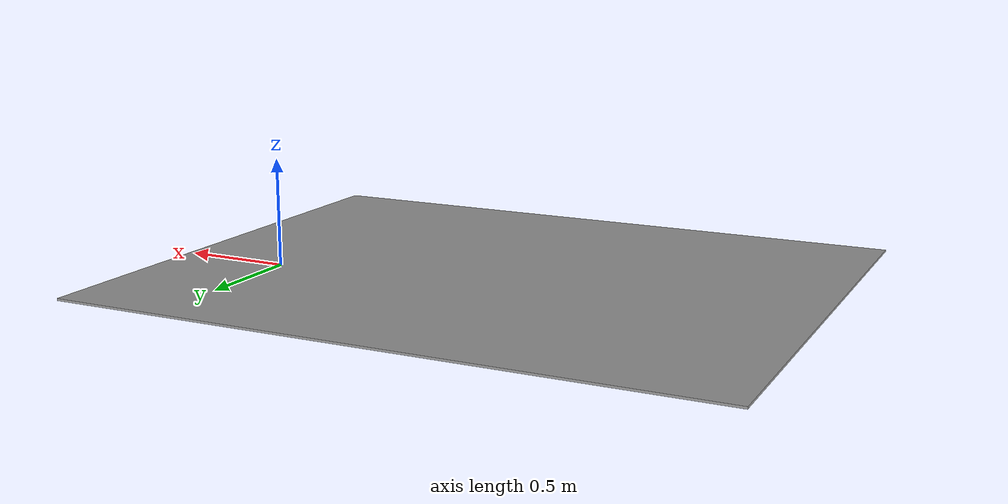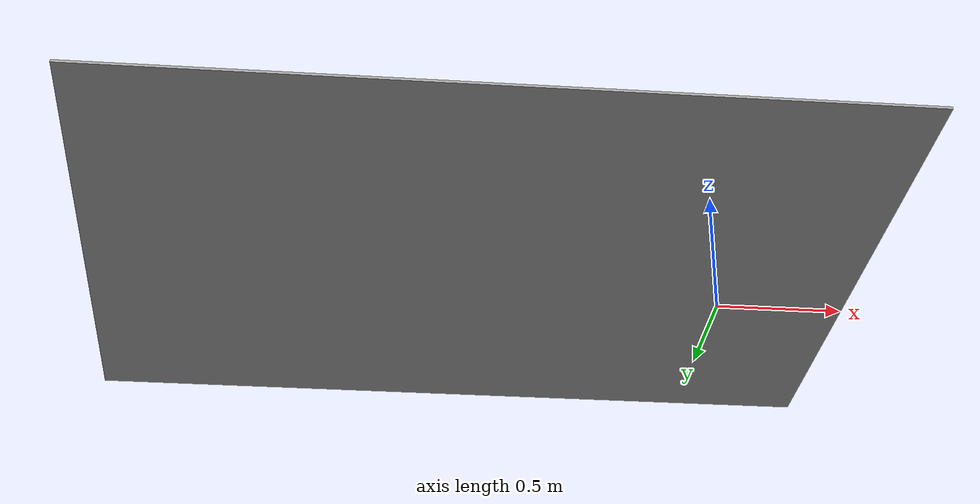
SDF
<?xml version='1.0'?>
<sdf version='1.7'>
  <model name='fish_tank_floor'>
    <pose>0 0 0 0 0 0</pose>
    <link name='Wall_0'>
      <collision name='Wall_0_Collision'>
        <geometry>
          <box>
            <size>3 2.4 0.01</size>
          </box>
        </geometry>
        <pose>0 0 0.005 0 -0 0</pose>
      </collision>
      <visual name='Wall_0_Visual'>
        <pose>0 0 0.005 0 -0 0</pose>
        <geometry>
          <box>
            <size>3 2.4 0.01</size>
          </box>
        </geometry>
        <material>
          <script>
            <uri>file://media/materials/scripts/gazebo.material</uri>
            <name>Gazebo/Grey</name>
          </script>
          <ambient>1 1 1 1</ambient>
        </material>
        <meta>
          <layer>0</layer>
        </meta>
      </visual>
      <pose>-0.995 -0.28 0 0 -0 0</pose>
    </link>
    <static>1</static>
  </model>
</sdf>
